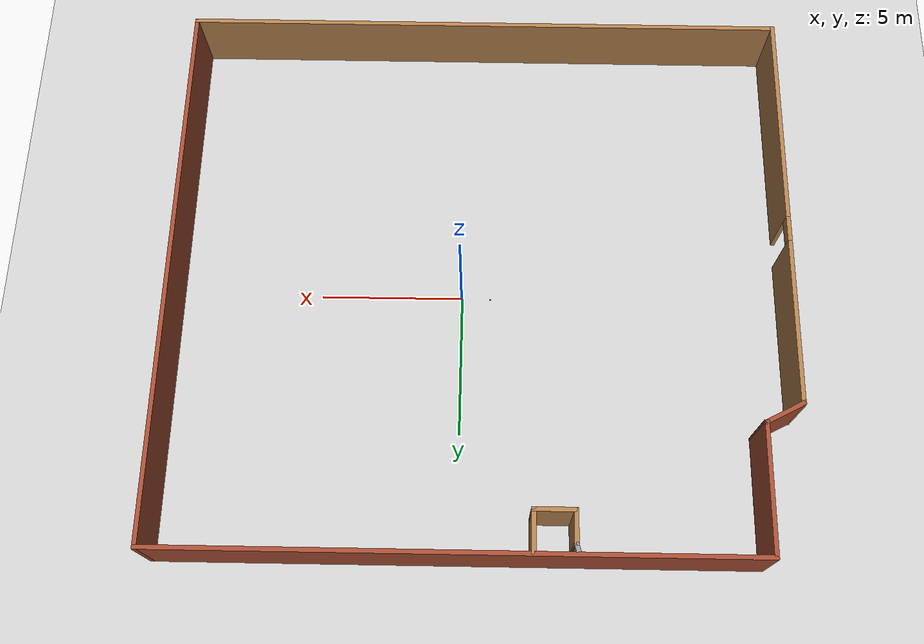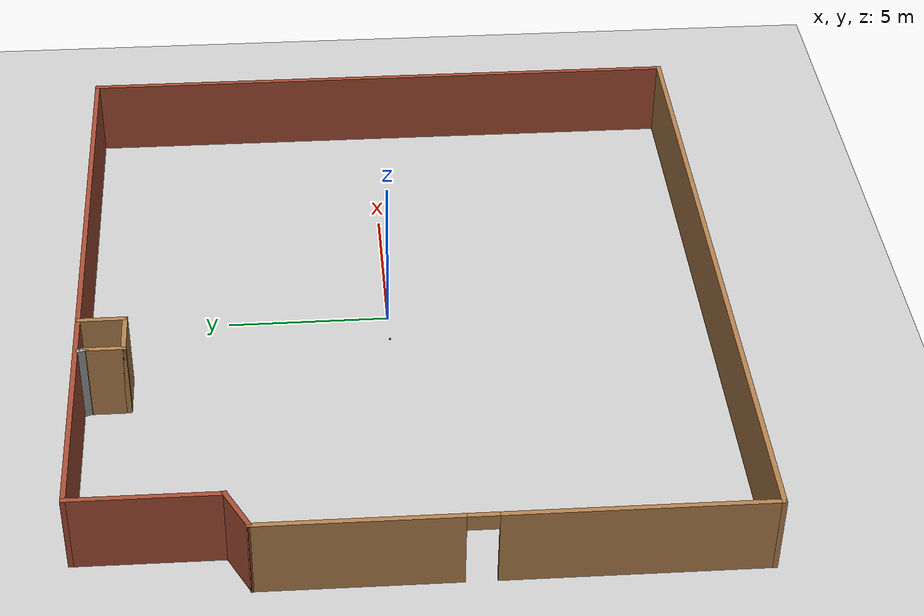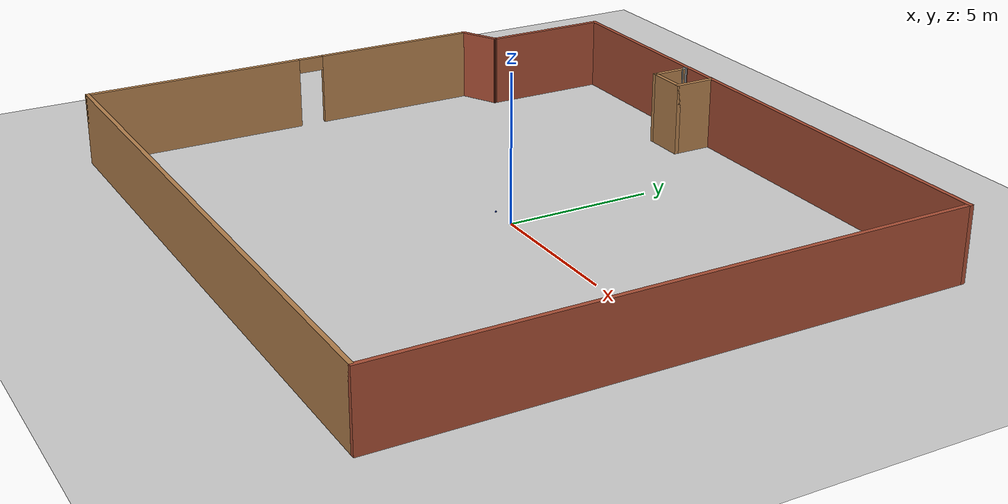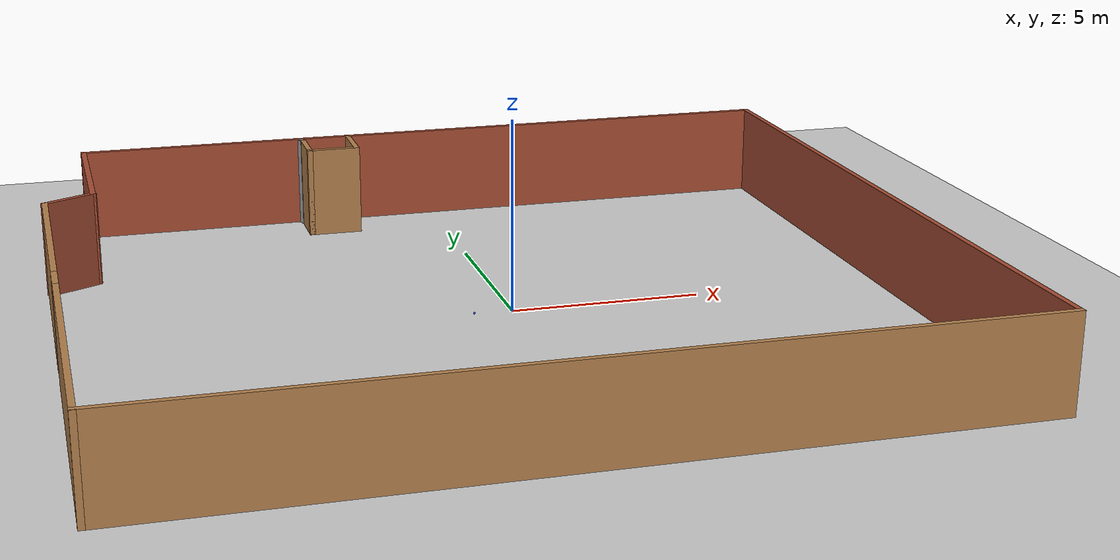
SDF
<sdf version="1.7">
 <world name="default">
  <model name="ground_plane">
   <static>1</static>
   <link name="link">
    <collision name="collision">
     <geometry><plane><normal>0 0 1</normal><size>100 100</size></plane></geometry>
     <surface><friction><ode><mu>100</mu><mu2>50</mu2></ode></friction></surface>
    </collision>
    <visual name="visual">
     <cast_shadows>0</cast_shadows>
     <geometry><plane><normal>0 0 1</normal><size>100 100</size></plane></geometry>
     <material>
      <script><uri>file://media/materials/scripts/gazebo.material</uri><name>Gazebo/Grey</name></script>
     </material>
    </visual>
   </link>
  </model>
  <include>
   <name>blue_projectile26</name>
   <pose>-1 0 0.03 0 0 0</pose>
   <uri>model://blue_projectile</uri>
  </include>
  <include>
   <name>blue_projectile27</name>
   <pose>-1 0 0.03 0 0 0</pose>
   <uri>model://blue_projectile</uri>
  </include>
  <include>
   <name>blue_projectile28</name>
   <pose>-1 0 0.03 0 0 0</pose>
   <uri>model://blue_projectile</uri>
  </include>
  <include>
   <name>blue_projectile29</name>
   <pose>-1 0 0.03 0 0 0</pose>
   <uri>model://blue_projectile</uri>
  </include>
  <model name="orb.world">
   <pose>-0.646897 -0.319754 0 0 -0 0</pose>
   <link name="Wall_11">
    <collision name="Wall_11_Collision">
     <geometry><box><size>1.5 0.15 2.5</size></box></geometry>
     <pose>0 0 1.25 0 -0 0</pose>
    </collision>
    <visual name="Wall_11_Visual">
     <pose>0 0 1.25 0 -0 0</pose>
     <geometry><box><size>1.5 0.15 2.5</size></box></geometry>
     <material>
      <script><uri>file://media/materials/scripts/gazebo.material</uri><name>Gazebo/Wood</name></script>
      <ambient>1 1 1 1</ambient>
     </material>
     <meta><layer>0</layer></meta>
    </visual>
    <pose>-1.82817 8.95466 0 0 -0 -1.5708</pose>
   </link>
   <link name="Wall_12">
    <collision name="Wall_12_Collision">
     <geometry><box><size>1.5 0.15 2.5</size></box></geometry>
     <pose>0 0 1.25 0 -0 0</pose>
    </collision>
    <visual name="Wall_12_Visual">
     <pose>0 0 1.25 0 -0 0</pose>
     <geometry><box><size>1.5 0.15 2.5</size></box></geometry>
     <material>
      <script><uri>file://media/materials/scripts/gazebo.material</uri><name>Gazebo/Wood</name></script>
      <ambient>1 1 1 1</ambient>
     </material>
     <meta><layer>0</layer></meta>
    </visual>
    <pose>-2.50317 8.27966 0 0 -0 3.14159</pose>
   </link>
   <link name="Wall_13">
    <collision name="Wall_13_Collision">
     <geometry><box><size>1.25 0.15 2.5</size></box></geometry>
     <pose>0 0 1.25 0 -0 0</pose>
    </collision>
    <visual name="Wall_13_Visual">
     <pose>0 0 1.25 0 -0 0</pose>
     <geometry><box><size>1.25 0.15 2.5</size></box></geometry>
     <material>
      <script><uri>file://media/materials/scripts/gazebo.material</uri><name>Gazebo/Wood</name></script>
      <ambient>1 1 1 1</ambient>
     </material>
     <meta><layer>0</layer></meta>
    </visual>
    <pose>-3.17817 8.82966 0 0 -0 1.5708</pose>
   </link>
   <link name="Wall_14">
    <collision name="Wall_14_Collision">
     <geometry><box><size>0.25 0.15 2.5</size></box></geometry>
     <pose>0 0 1.25 0 -0 0</pose>
    </collision>
    <visual name="Wall_14_Visual">
     <pose>0 0 1.25 0 -0 0</pose>
     <geometry><box><size>0.25 0.15 2.5</size></box></geometry>
     <material>
      <script><uri>file://media/materials/scripts/gazebo.material</uri><name>Gazebo/Grey</name></script>
      <ambient>1 1 1 1</ambient>
     </material>
     <meta><layer>0</layer></meta>
    </visual>
    <pose>-3.19111 9.42796 0 0 -0 1.8326</pose>
   </link>
   <link name="Wall_15">
    <collision name="Wall_15_Collision">
     <geometry><box><size>0.25 0.15 2.5</size></box></geometry>
     <pose>0 0 1.25 0 -0 0</pose>
    </collision>
    <visual name="Wall_15_Visual">
     <pose>0 0 1.25 0 -0 0</pose>
     <geometry><box><size>0.25 0.15 2.5</size></box></geometry>
     <material>
      <script><uri>file://media/materials/scripts/gazebo.material</uri><name>Gazebo/Grey</name></script>
      <ambient>1 1 1 1</ambient>
     </material>
     <meta><layer>0</layer></meta>
    </visual>
    <pose>-3.217 9.52455 0 0 -0 1.8326</pose>
   </link>
   <link name="Wall_4">
    <pose>-10.6619 -2.5 0 0 -0 -1.5708</pose>
    <visual name="Wall_4_Visual_0">
     <pose>-4.31682 0 1.25 0 -0 0</pose>
     <geometry><box><size>5.86636 0.15 2.5</size></box></geometry>
     <material>
      <script><uri>file://media/materials/scripts/gazebo.material</uri><name>Gazebo/Wood</name></script>
      <ambient>1 1 1 1</ambient>
     </material>
     <meta><layer>0</layer></meta>
    </visual>
    <collision name="Wall_4_Collision_0">
     <geometry><box><size>5.86636 0.15 2.5</size></box></geometry>
     <pose>-4.31682 0 1.25 0 -0 0</pose>
    </collision>
    <visual name="Wall_4_Visual_1">
     <pose>3.38318 0 1.25 0 -0 0</pose>
     <geometry><box><size>7.73364 0.15 2.5</size></box></geometry>
     <material>
      <script><uri>file://media/materials/scripts/gazebo.material</uri><name>Gazebo/Wood</name></script>
      <ambient>1 1 1 1</ambient>
     </material>
     <meta><layer>0</layer></meta>
    </visual>
    <collision name="Wall_4_Collision_1">
     <geometry><box><size>7.73364 0.15 2.5</size></box></geometry>
     <pose>3.38318 0 1.25 0 -0 0</pose>
    </collision>
    <visual name="Wall_4_Visual_2">
     <pose>-0.933638 0 2.25 0 -0 0</pose>
     <geometry><box><size>0.9 0.15 0.5</size></box></geometry>
     <material>
      <script><uri>file://media/materials/scripts/gazebo.material</uri><name>Gazebo/Wood</name></script>
      <ambient>1 1 1 1</ambient>
     </material>
     <meta><layer>0</layer></meta>
    </visual>
    <collision name="Wall_4_Collision_2">
     <geometry><box><size>0.9 0.15 0.5</size></box></geometry>
     <pose>-0.933638 0 2.25 0 -0 0</pose>
    </collision>
   </link>
   <link name="Wall_5">
    <collision name="Wall_5_Collision">
     <geometry><box><size>21.5 0.15 2.5</size></box></geometry>
     <pose>0 0 1.25 0 -0 0</pose>
    </collision>
    <visual name="Wall_5_Visual">
     <pose>0 0 1.25 0 -0 0</pose>
     <geometry><box><size>21.5 0.15 2.5</size></box></geometry>
     <material>
      <script><uri>file://media/materials/scripts/gazebo.material</uri><name>Gazebo/Wood</name></script>
      <ambient>1 1 1 1</ambient>
     </material>
     <meta><layer>0</layer></meta>
    </visual>
    <pose>0.013071 -9.675 0 0 -0 0</pose>
   </link>
   <link name="Wall_6">
    <collision name="Wall_6_Collision">
     <geometry><box><size>19.5 0.15 2.5</size></box></geometry>
     <pose>0 0 1.25 0 -0 0</pose>
    </collision>
    <visual name="Wall_6_Visual">
     <pose>0 0 1.25 0 -0 0</pose>
     <geometry><box><size>19.5 0.15 2.5</size></box></geometry>
     <material>
      <script><uri>file://media/materials/scripts/gazebo.material</uri><name>Gazebo/Bricks</name></script>
      <ambient>1 1 1 1</ambient>
     </material>
     <meta><layer>0</layer></meta>
    </visual>
    <pose>10.6881 -0 0 0 -0 1.5708</pose>
   </link>
   <link name="Wall_7">
    <collision name="Wall_7_Collision">
     <geometry><box><size>20.25 0.15 2.5</size></box></geometry>
     <pose>0 0 1.25 0 -0 0</pose>
    </collision>
    <visual name="Wall_7_Visual">
     <pose>0 0 1.25 0 -0 0</pose>
     <geometry><box><size>20.25 0.15 2.5</size></box></geometry>
     <material>
      <script><uri>file://media/materials/scripts/gazebo.material</uri><name>Gazebo/Bricks</name></script>
      <ambient>1 1 1 1</ambient>
     </material>
     <meta><layer>0</layer></meta>
    </visual>
    <pose>0.638071 9.675 0 0 -0 3.14159</pose>
   </link>
   <link name="Wall_8">
    <collision name="Wall_8_Collision">
     <geometry><box><size>4.5 0.15 2.5</size></box></geometry>
     <pose>0 0 1.25 0 -0 0</pose>
    </collision>
    <visual name="Wall_8_Visual">
     <pose>0 0 1.25 0 -0 0</pose>
     <geometry><box><size>4.5 0.15 2.5</size></box></geometry>
     <material>
      <script><uri>file://media/materials/scripts/gazebo.material</uri><name>Gazebo/Bricks</name></script>
      <ambient>1 1 1 1</ambient>
     </material>
     <meta><layer>0</layer></meta>
    </visual>
    <pose>-9.41193 7.5 0 0 -0 -1.5708</pose>
   </link>
   <link name="Wall_9">
    <collision name="Wall_9_Collision">
     <geometry><box><size>1.5589 0.15 2.5</size></box></geometry>
     <pose>0 0 1.25 0 -0 0</pose>
    </collision>
    <visual name="Wall_9_Visual">
     <pose>0 0 1.25 0 -0 0</pose>
     <geometry><box><size>1.5589 0.15 2.5</size></box></geometry>
     <material>
      <script><uri>file://media/materials/scripts/gazebo.material</uri><name>Gazebo/Bricks</name></script>
      <ambient>1 1 1 1</ambient>
     </material>
     <meta><layer>0</layer></meta>
    </visual>
    <pose>-10.0369 5 0 0 -0 -2.66207</pose>
   </link>
   <static>1</static>
  </model>
 </world>
</sdf>
